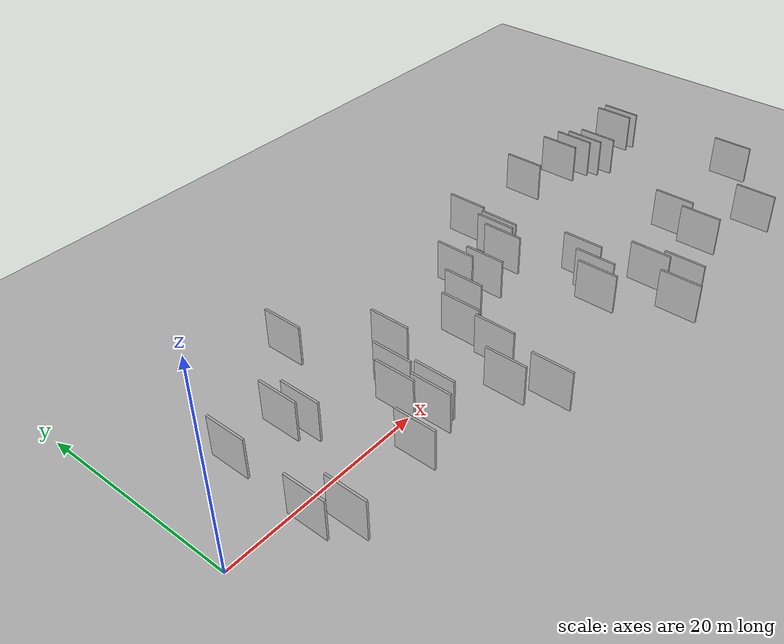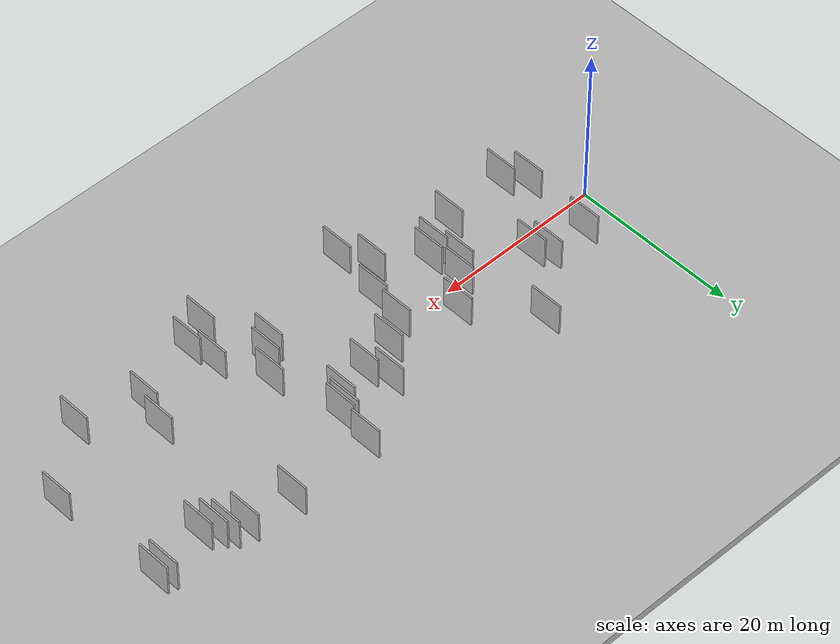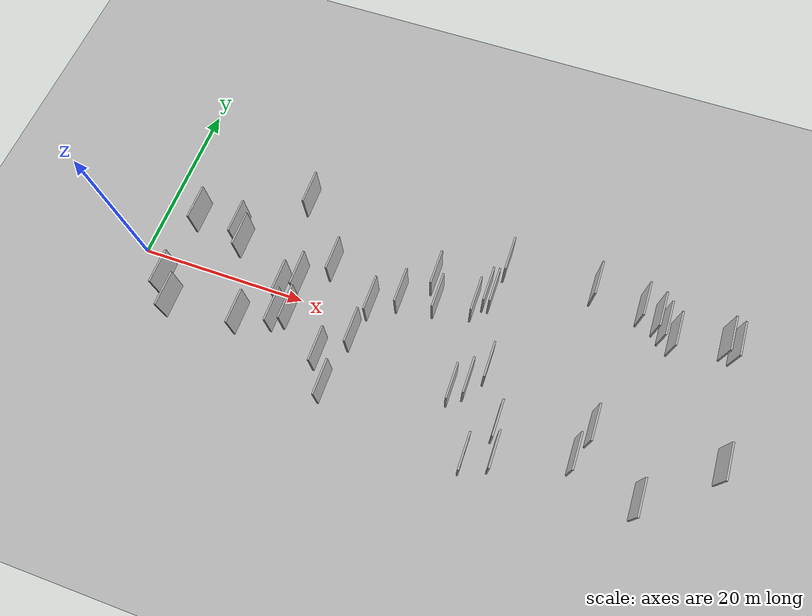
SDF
<?xml version="1.0" encoding="utf-8"?>

<sdf version="1.6">

   <world name="default">

      <gui fullscreen="0">

         <camera name="user_camera">

            <pose>-15 0 4.57585 0 0 0</pose>

            <view_controller>orbit</view_controller>

         </camera>

      </gui>

      <scene>

         <sky>

           <clouds>

             <speed>12</speed>

           </clouds>

         </sky>

         <ambient>0.4 0.4 0.4 1</ambient>

         <background>0.7 0.7 0.7 1</background>

         <shadows>1</shadows>

      </scene>

      <gravity>0 0 -9.8066</gravity>

      <magnetic_field>6e-06 2.3e-05 -4.2e-05</magnetic_field>

      <physics default="0" name="default_physics" type="ode">

         <ode>

            <solver>

               <type>quick</type>

               <iters>10</iters>

               <sor>1.0</sor>

               <use_dynamic_moi_rescaling>0</use_dynamic_moi_rescaling>

            </solver>

            <constraints>

               <cfm>0</cfm>

               <erp>0.2</erp>

               <contact_max_correcting_vel>100</contact_max_correcting_vel>

               <contact_surface_layer>0.001</contact_surface_layer>

            </constraints>

         </ode>

         <max_step_size>0.004</max_step_size>

         <real_time_factor>1</real_time_factor>

         <real_time_update_rate>250</real_time_update_rate>

      </physics>

      <light name="sun" type="directional">

         <cast_shadows>1</cast_shadows>

         <pose>0 0 10 0 0 0</pose>

         <diffuse>0.8 0.8 0.8 1</diffuse>

         <specular>0.2 0.2 0.2 1</specular>

         <attenuation>

            <range>1000</range>

            <constant>0.9</constant>

            <linear>0.01</linear>

            <quadratic>0.001</quadratic>

         </attenuation>

         <direction>-0.5 0.1 -0.9</direction>

      </light>

      <include>

         <name>ground_plane_1</name>

         <uri>model://HANNAS_ground_plane</uri>

         <pose>0 0 0  0 0 0</pose>

      </include>

      <include>

         <name>ground_plane_2</name>

         <uri>model://HANNAS_ground_plane</uri>

         <pose>100 0 0  0 0 0</pose>

      </include>

      <model name="HANNAS_wall_1">

         <static>1</static>

         <pose frame="">18.9152 -3.2764 2.5 0.000000 0.000000 1.570796</pose>

         <link name="link">

            <pose frame="">0 0 2.00 0 0 0</pose>

            <collision name="collision">

               <geometry>

                  <box>

                     <size>4.00 0.2 4.00</size>

                  </box>

               </geometry>

               <max_contacts>10</max_contacts>

               <surface>

                  <contact>

                     <ode/>

                  </contact>

                  <bounce/>

                  <friction>

                     <torsional>

                        <ode/>

                     </torsional>

                     <ode/>

                  </friction>

               </surface>

            </collision>

            <visual name="visual">

               <cast_shadows>0</cast_shadows>

               <geometry>

                  <box>

                     <size>4.00 0.2 4.00</size>

                  </box>

               </geometry>

               <material>

                  <script>

                     <uri>model://HANNAS_wall/materials/scripts</uri>

                     <uri>model://HANNAS_wall/materials/textures</uri>

                     <name>vrc/HANNAS_wall</name>

                  </script>

               </material>

            </visual>

            <self_collide>0</self_collide>

            <enable_wind>0</enable_wind>

            <kinematic>0</kinematic>

         </link>

      </model>

      <model name="HANNAS_wall_2">

         <static>1</static>

         <pose frame="">31.3084 3.2368 2.5 0.000000 0.000000 1.570796</pose>

         <link name="link">

            <pose frame="">0 0 2.00 0 0 0</pose>

            <collision name="collision">

               <geometry>

                  <box>

                     <size>4.00 0.2 4.00</size>

                  </box>

               </geometry>

               <max_contacts>10</max_contacts>

               <surface>

                  <contact>

                     <ode/>

                  </contact>

                  <bounce/>

                  <friction>

                     <torsional>

                        <ode/>

                     </torsional>

                     <ode/>

                  </friction>

               </surface>

            </collision>

            <visual name="visual">

               <cast_shadows>0</cast_shadows>

               <geometry>

                  <box>

                     <size>4.00 0.2 4.00</size>

                  </box>

               </geometry>

               <material>

                  <script>

                     <uri>model://HANNAS_wall/materials/scripts</uri>

                     <uri>model://HANNAS_wall/materials/textures</uri>

                     <name>vrc/HANNAS_wall</name>

                  </script>

               </material>

            </visual>

            <self_collide>0</self_collide>

            <enable_wind>0</enable_wind>

            <kinematic>0</kinematic>

         </link>

      </model>

      <model name="HANNAS_wall_3">

         <static>1</static>

         <pose frame="">59.7423 8.9145 2.5 0.000000 0.000000 1.570796</pose>

         <link name="link">

            <pose frame="">0 0 2.00 0 0 0</pose>

            <collision name="collision">

               <geometry>

                  <box>

                     <size>4.00 0.2 4.00</size>

                  </box>

               </geometry>

               <max_contacts>10</max_contacts>

               <surface>

                  <contact>

                     <ode/>

                  </contact>

                  <bounce/>

                  <friction>

                     <torsional>

                        <ode/>

                     </torsional>

                     <ode/>

                  </friction>

               </surface>

            </collision>

            <visual name="visual">

               <cast_shadows>0</cast_shadows>

               <geometry>

                  <box>

                     <size>4.00 0.2 4.00</size>

                  </box>

               </geometry>

               <material>

                  <script>

                     <uri>model://HANNAS_wall/materials/scripts</uri>

                     <uri>model://HANNAS_wall/materials/textures</uri>

                     <name>vrc/HANNAS_wall</name>

                  </script>

               </material>

            </visual>

            <self_collide>0</self_collide>

            <enable_wind>0</enable_wind>

            <kinematic>0</kinematic>

         </link>

      </model>

      <model name="HANNAS_wall_4">

         <static>1</static>

         <pose frame="">66.5368 9.4041 2.5 0.000000 0.000000 1.570796</pose>

         <link name="link">

            <pose frame="">0 0 2.00 0 0 0</pose>

            <collision name="collision">

               <geometry>

                  <box>

                     <size>4.00 0.2 4.00</size>

                  </box>

               </geometry>

               <max_contacts>10</max_contacts>

               <surface>

                  <contact>

                     <ode/>

                  </contact>

                  <bounce/>

                  <friction>

                     <torsional>

                        <ode/>

                     </torsional>

                     <ode/>

                  </friction>

               </surface>

            </collision>

            <visual name="visual">

               <cast_shadows>0</cast_shadows>

               <geometry>

                  <box>

                     <size>4.00 0.2 4.00</size>

                  </box>

               </geometry>

               <material>

                  <script>

                     <uri>model://HANNAS_wall/materials/scripts</uri>

                     <uri>model://HANNAS_wall/materials/textures</uri>

                     <name>vrc/HANNAS_wall</name>

                  </script>

               </material>

            </visual>

            <self_collide>0</self_collide>

            <enable_wind>0</enable_wind>

            <kinematic>0</kinematic>

         </link>

      </model>

      <model name="HANNAS_wall_5">

         <static>1</static>

         <pose frame="">10.8413 5.2061 2.5 0.000000 0.000000 1.570796</pose>

         <link name="link">

            <pose frame="">0 0 2.00 0 0 0</pose>

            <collision name="collision">

               <geometry>

                  <box>

                     <size>4.00 0.2 4.00</size>

                  </box>

               </geometry>

               <max_contacts>10</max_contacts>

               <surface>

                  <contact>

                     <ode/>

                  </contact>

                  <bounce/>

                  <friction>

                     <torsional>

                        <ode/>

                     </torsional>

                     <ode/>

                  </friction>

               </surface>

            </collision>

            <visual name="visual">

               <cast_shadows>0</cast_shadows>

               <geometry>

                  <box>

                     <size>4.00 0.2 4.00</size>

                  </box>

               </geometry>

               <material>

                  <script>

                     <uri>model://HANNAS_wall/materials/scripts</uri>

                     <uri>model://HANNAS_wall/materials/textures</uri>

                     <name>vrc/HANNAS_wall</name>

                  </script>

               </material>

            </visual>

            <self_collide>0</self_collide>

            <enable_wind>0</enable_wind>

            <kinematic>0</kinematic>

         </link>

      </model>

      <model name="HANNAS_wall_6">

         <static>1</static>

         <pose frame="">46.1111 -10.3459 2.5 0.000000 0.000000 1.570796</pose>

         <link name="link">

            <pose frame="">0 0 2.00 0 0 0</pose>

            <collision name="collision">

               <geometry>

                  <box>

                     <size>4.00 0.2 4.00</size>

                  </box>

               </geometry>

               <max_contacts>10</max_contacts>

               <surface>

                  <contact>

                     <ode/>

                  </contact>

                  <bounce/>

                  <friction>

                     <torsional>

                        <ode/>

                     </torsional>

                     <ode/>

                  </friction>

               </surface>

            </collision>

            <visual name="visual">

               <cast_shadows>0</cast_shadows>

               <geometry>

                  <box>

                     <size>4.00 0.2 4.00</size>

                  </box>

               </geometry>

               <material>

                  <script>

                     <uri>model://HANNAS_wall/materials/scripts</uri>

                     <uri>model://HANNAS_wall/materials/textures</uri>

                     <name>vrc/HANNAS_wall</name>

                  </script>

               </material>

            </visual>

            <self_collide>0</self_collide>

            <enable_wind>0</enable_wind>

            <kinematic>0</kinematic>

         </link>

      </model>

      <model name="HANNAS_wall_7">

         <static>1</static>

         <pose frame="">54.9955 -4.4784 2.5 0.000000 0.000000 1.570796</pose>

         <link name="link">

            <pose frame="">0 0 2.00 0 0 0</pose>

            <collision name="collision">

               <geometry>

                  <box>

                     <size>4.00 0.2 4.00</size>

                  </box>

               </geometry>

               <max_contacts>10</max_contacts>

               <surface>

                  <contact>

                     <ode/>

                  </contact>

                  <bounce/>

                  <friction>

                     <torsional>

                        <ode/>

                     </torsional>

                     <ode/>

                  </friction>

               </surface>

            </collision>

            <visual name="visual">

               <cast_shadows>0</cast_shadows>

               <geometry>

                  <box>

                     <size>4.00 0.2 4.00</size>

                  </box>

               </geometry>

               <material>

                  <script>

                     <uri>model://HANNAS_wall/materials/scripts</uri>

                     <uri>model://HANNAS_wall/materials/textures</uri>

                     <name>vrc/HANNAS_wall</name>

                  </script>

               </material>

            </visual>

            <self_collide>0</self_collide>

            <enable_wind>0</enable_wind>

            <kinematic>0</kinematic>

         </link>

      </model>

      <model name="HANNAS_wall_8">

         <static>1</static>

         <pose frame="">26.8889 -9.0898 2.5 0.000000 0.000000 1.570796</pose>

         <link name="link">

            <pose frame="">0 0 2.00 0 0 0</pose>

            <collision name="collision">

               <geometry>

                  <box>

                     <size>4.00 0.2 4.00</size>

                  </box>

               </geometry>

               <max_contacts>10</max_contacts>

               <surface>

                  <contact>

                     <ode/>

                  </contact>

                  <bounce/>

                  <friction>

                     <torsional>

                        <ode/>

                     </torsional>

                     <ode/>

                  </friction>

               </surface>

            </collision>

            <visual name="visual">

               <cast_shadows>0</cast_shadows>

               <geometry>

                  <box>

                     <size>4.00 0.2 4.00</size>

                  </box>

               </geometry>

               <material>

                  <script>

                     <uri>model://HANNAS_wall/materials/scripts</uri>

                     <uri>model://HANNAS_wall/materials/textures</uri>

                     <name>vrc/HANNAS_wall</name>

                  </script>

               </material>

            </visual>

            <self_collide>0</self_collide>

            <enable_wind>0</enable_wind>

            <kinematic>0</kinematic>

         </link>

      </model>

      <model name="HANNAS_wall_9">

         <static>1</static>

         <pose frame="">20.2172 -2.5697 2.5 0.000000 0.000000 1.570796</pose>

         <link name="link">

            <pose frame="">0 0 2.00 0 0 0</pose>

            <collision name="collision">

               <geometry>

                  <box>

                     <size>4.00 0.2 4.00</size>

                  </box>

               </geometry>

               <max_contacts>10</max_contacts>

               <surface>

                  <contact>

                     <ode/>

                  </contact>

                  <bounce/>

                  <friction>

                     <torsional>

                        <ode/>

                     </torsional>

                     <ode/>

                  </friction>

               </surface>

            </collision>

            <visual name="visual">

               <cast_shadows>0</cast_shadows>

               <geometry>

                  <box>

                     <size>4.00 0.2 4.00</size>

                  </box>

               </geometry>

               <material>

                  <script>

                     <uri>model://HANNAS_wall/materials/scripts</uri>

                     <uri>model://HANNAS_wall/materials/textures</uri>

                     <name>vrc/HANNAS_wall</name>

                  </script>

               </material>

            </visual>

            <self_collide>0</self_collide>

            <enable_wind>0</enable_wind>

            <kinematic>0</kinematic>

         </link>

      </model>

      <model name="HANNAS_wall_10">

         <static>1</static>

         <pose frame="">68.4277 -4.0222 2.5 0.000000 0.000000 1.570796</pose>

         <link name="link">

            <pose frame="">0 0 2.00 0 0 0</pose>

            <collision name="collision">

               <geometry>

                  <box>

                     <size>4.00 0.2 4.00</size>

                  </box>

               </geometry>

               <max_contacts>10</max_contacts>

               <surface>

                  <contact>

                     <ode/>

                  </contact>

                  <bounce/>

                  <friction>

                     <torsional>

                        <ode/>

                     </torsional>

                     <ode/>

                  </friction>

               </surface>

            </collision>

            <visual name="visual">

               <cast_shadows>0</cast_shadows>

               <geometry>

                  <box>

                     <size>4.00 0.2 4.00</size>

                  </box>

               </geometry>

               <material>

                  <script>

                     <uri>model://HANNAS_wall/materials/scripts</uri>

                     <uri>model://HANNAS_wall/materials/textures</uri>

                     <name>vrc/HANNAS_wall</name>

                  </script>

               </material>

            </visual>

            <self_collide>0</self_collide>

            <enable_wind>0</enable_wind>

            <kinematic>0</kinematic>

         </link>

      </model>

      <model name="HANNAS_wall_11">

         <static>1</static>

         <pose frame="">40.3385 6.4773 2.5 0.000000 0.000000 1.570796</pose>

         <link name="link">

            <pose frame="">0 0 2.00 0 0 0</pose>

            <collision name="collision">

               <geometry>

                  <box>

                     <size>4.00 0.2 4.00</size>

                  </box>

               </geometry>

               <max_contacts>10</max_contacts>

               <surface>

                  <contact>

                     <ode/>

                  </contact>

                  <bounce/>

                  <friction>

                     <torsional>

                        <ode/>

                     </torsional>

                     <ode/>

                  </friction>

               </surface>

            </collision>

            <visual name="visual">

               <cast_shadows>0</cast_shadows>

               <geometry>

                  <box>

                     <size>4.00 0.2 4.00</size>

                  </box>

               </geometry>

               <material>

                  <script>

                     <uri>model://HANNAS_wall/materials/scripts</uri>

                     <uri>model://HANNAS_wall/materials/textures</uri>

                     <name>vrc/HANNAS_wall</name>

                  </script>

               </material>

            </visual>

            <self_collide>0</self_collide>

            <enable_wind>0</enable_wind>

            <kinematic>0</kinematic>

         </link>

      </model>

      <model name="HANNAS_wall_12">

         <static>1</static>

         <pose frame="">39.9036 -5.0857 2.5 0.000000 0.000000 1.570796</pose>

         <link name="link">

            <pose frame="">0 0 2.00 0 0 0</pose>

            <collision name="collision">

               <geometry>

                  <box>

                     <size>4.00 0.2 4.00</size>

                  </box>

               </geometry>

               <max_contacts>10</max_contacts>

               <surface>

                  <contact>

                     <ode/>

                  </contact>

                  <bounce/>

                  <friction>

                     <torsional>

                        <ode/>

                     </torsional>

                     <ode/>

                  </friction>

               </surface>

            </collision>

            <visual name="visual">

               <cast_shadows>0</cast_shadows>

               <geometry>

                  <box>

                     <size>4.00 0.2 4.00</size>

                  </box>

               </geometry>

               <material>

                  <script>

                     <uri>model://HANNAS_wall/materials/scripts</uri>

                     <uri>model://HANNAS_wall/materials/textures</uri>

                     <name>vrc/HANNAS_wall</name>

                  </script>

               </material>

            </visual>

            <self_collide>0</self_collide>

            <enable_wind>0</enable_wind>

            <kinematic>0</kinematic>

         </link>

      </model>

      <model name="HANNAS_wall_13">

         <static>1</static>

         <pose frame="">35.3402 3.9706 2.5 0.000000 0.000000 1.570796</pose>

         <link name="link">

            <pose frame="">0 0 2.00 0 0 0</pose>

            <collision name="collision">

               <geometry>

                  <box>

                     <size>4.00 0.2 4.00</size>

                  </box>

               </geometry>

               <max_contacts>10</max_contacts>

               <surface>

                  <contact>

                     <ode/>

                  </contact>

                  <bounce/>

                  <friction>

                     <torsional>

                        <ode/>

                     </torsional>

                     <ode/>

                  </friction>

               </surface>

            </collision>

            <visual name="visual">

               <cast_shadows>0</cast_shadows>

               <geometry>

                  <box>

                     <size>4.00 0.2 4.00</size>

                  </box>

               </geometry>

               <material>

                  <script>

                     <uri>model://HANNAS_wall/materials/scripts</uri>

                     <uri>model://HANNAS_wall/materials/textures</uri>

                     <name>vrc/HANNAS_wall</name>

                  </script>

               </material>

            </visual>

            <self_collide>0</self_collide>

            <enable_wind>0</enable_wind>

            <kinematic>0</kinematic>

         </link>

      </model>

      <model name="HANNAS_wall_14">

         <static>1</static>

         <pose frame="">11.9084 3.8685 2.5 0.000000 0.000000 1.570796</pose>

         <link name="link">

            <pose frame="">0 0 2.00 0 0 0</pose>

            <collision name="collision">

               <geometry>

                  <box>

                     <size>4.00 0.2 4.00</size>

                  </box>

               </geometry>

               <max_contacts>10</max_contacts>

               <surface>

                  <contact>

                     <ode/>

                  </contact>

                  <bounce/>

                  <friction>

                     <torsional>

                        <ode/>

                     </torsional>

                     <ode/>

                  </friction>

               </surface>

            </collision>

            <visual name="visual">

               <cast_shadows>0</cast_shadows>

               <geometry>

                  <box>

                     <size>4.00 0.2 4.00</size>

                  </box>

               </geometry>

               <material>

                  <script>

                     <uri>model://HANNAS_wall/materials/scripts</uri>

                     <uri>model://HANNAS_wall/materials/textures</uri>

                     <name>vrc/HANNAS_wall</name>

                  </script>

               </material>

            </visual>

            <self_collide>0</self_collide>

            <enable_wind>0</enable_wind>

            <kinematic>0</kinematic>

         </link>

      </model>

      <model name="HANNAS_wall_15">

         <static>1</static>

         <pose frame="">42.9193 -1.6453 2.5 0.000000 0.000000 1.570796</pose>

         <link name="link">

            <pose frame="">0 0 2.00 0 0 0</pose>

            <collision name="collision">

               <geometry>

                  <box>

                     <size>4.00 0.2 4.00</size>

                  </box>

               </geometry>

               <max_contacts>10</max_contacts>

               <surface>

                  <contact>

                     <ode/>

                  </contact>

                  <bounce/>

                  <friction>

                     <torsional>

                        <ode/>

                     </torsional>

                     <ode/>

                  </friction>

               </surface>

            </collision>

            <visual name="visual">

               <cast_shadows>0</cast_shadows>

               <geometry>

                  <box>

                     <size>4.00 0.2 4.00</size>

                  </box>

               </geometry>

               <material>

                  <script>

                     <uri>model://HANNAS_wall/materials/scripts</uri>

                     <uri>model://HANNAS_wall/materials/textures</uri>

                     <name>vrc/HANNAS_wall</name>

                  </script>

               </material>

            </visual>

            <self_collide>0</self_collide>

            <enable_wind>0</enable_wind>

            <kinematic>0</kinematic>

         </link>

      </model>

      <model name="HANNAS_wall_16">

         <static>1</static>

         <pose frame="">51.5432 11.0576 2.5 0.000000 0.000000 1.570796</pose>

         <link name="link">

            <pose frame="">0 0 2.00 0 0 0</pose>

            <collision name="collision">

               <geometry>

                  <box>

                     <size>4.00 0.2 4.00</size>

                  </box>

               </geometry>

               <max_contacts>10</max_contacts>

               <surface>

                  <contact>

                     <ode/>

                  </contact>

                  <bounce/>

                  <friction>

                     <torsional>

                        <ode/>

                     </torsional>

                     <ode/>

                  </friction>

               </surface>

            </collision>

            <visual name="visual">

               <cast_shadows>0</cast_shadows>

               <geometry>

                  <box>

                     <size>4.00 0.2 4.00</size>

                  </box>

               </geometry>

               <material>

                  <script>

                     <uri>model://HANNAS_wall/materials/scripts</uri>

                     <uri>model://HANNAS_wall/materials/textures</uri>

                     <name>vrc/HANNAS_wall</name>

                  </script>

               </material>

            </visual>

            <self_collide>0</self_collide>

            <enable_wind>0</enable_wind>

            <kinematic>0</kinematic>

         </link>

      </model>

      <model name="HANNAS_wall_17">

         <static>1</static>

         <pose frame="">7.1362 -5.4254 2.5 0.000000 0.000000 1.570796</pose>

         <link name="link">

            <pose frame="">0 0 2.00 0 0 0</pose>

            <collision name="collision">

               <geometry>

                  <box>

                     <size>4.00 0.2 4.00</size>

                  </box>

               </geometry>

               <max_contacts>10</max_contacts>

               <surface>

                  <contact>

                     <ode/>

                  </contact>

                  <bounce/>

                  <friction>

                     <torsional>

                        <ode/>

                     </torsional>

                     <ode/>

                  </friction>

               </surface>

            </collision>

            <visual name="visual">

               <cast_shadows>0</cast_shadows>

               <geometry>

                  <box>

                     <size>4.00 0.2 4.00</size>

                  </box>

               </geometry>

               <material>

                  <script>

                     <uri>model://HANNAS_wall/materials/scripts</uri>

                     <uri>model://HANNAS_wall/materials/textures</uri>

                     <name>vrc/HANNAS_wall</name>

                  </script>

               </material>

            </visual>

            <self_collide>0</self_collide>

            <enable_wind>0</enable_wind>

            <kinematic>0</kinematic>

         </link>

      </model>

      <model name="HANNAS_wall_18">

         <static>1</static>

         <pose frame="">40.9974 6.5604 2.5 0.000000 0.000000 1.570796</pose>

         <link name="link">

            <pose frame="">0 0 2.00 0 0 0</pose>

            <collision name="collision">

               <geometry>

                  <box>

                     <size>4.00 0.2 4.00</size>

                  </box>

               </geometry>

               <max_contacts>10</max_contacts>

               <surface>

                  <contact>

                     <ode/>

                  </contact>

                  <bounce/>

                  <friction>

                     <torsional>

                        <ode/>

                     </torsional>

                     <ode/>

                  </friction>

               </surface>

            </collision>

            <visual name="visual">

               <cast_shadows>0</cast_shadows>

               <geometry>

                  <box>

                     <size>4.00 0.2 4.00</size>

                  </box>

               </geometry>

               <material>

                  <script>

                     <uri>model://HANNAS_wall/materials/scripts</uri>

                     <uri>model://HANNAS_wall/materials/textures</uri>

                     <name>vrc/HANNAS_wall</name>

                  </script>

               </material>

            </visual>

            <self_collide>0</self_collide>

            <enable_wind>0</enable_wind>

            <kinematic>0</kinematic>

         </link>

      </model>

      <model name="HANNAS_wall_19">

         <static>1</static>

         <pose frame="">18.3172 -0.0815 2.5 0.000000 0.000000 1.570796</pose>

         <link name="link">

            <pose frame="">0 0 2.00 0 0 0</pose>

            <collision name="collision">

               <geometry>

                  <box>

                     <size>4.00 0.2 4.00</size>

                  </box>

               </geometry>

               <max_contacts>10</max_contacts>

               <surface>

                  <contact>

                     <ode/>

                  </contact>

                  <bounce/>

                  <friction>

                     <torsional>

                        <ode/>

                     </torsional>

                     <ode/>

                  </friction>

               </surface>

            </collision>

            <visual name="visual">

               <cast_shadows>0</cast_shadows>

               <geometry>

                  <box>

                     <size>4.00 0.2 4.00</size>

                  </box>

               </geometry>

               <material>

                  <script>

                     <uri>model://HANNAS_wall/materials/scripts</uri>

                     <uri>model://HANNAS_wall/materials/textures</uri>

                     <name>vrc/HANNAS_wall</name>

                  </script>

               </material>

            </visual>

            <self_collide>0</self_collide>

            <enable_wind>0</enable_wind>

            <kinematic>0</kinematic>

         </link>

      </model>

      <model name="HANNAS_wall_20">

         <static>1</static>

         <pose frame="">17.2903 11.3430 2.5 0.000000 0.000000 1.570796</pose>

         <link name="link">

            <pose frame="">0 0 2.00 0 0 0</pose>

            <collision name="collision">

               <geometry>

                  <box>

                     <size>4.00 0.2 4.00</size>

                  </box>

               </geometry>

               <max_contacts>10</max_contacts>

               <surface>

                  <contact>

                     <ode/>

                  </contact>

                  <bounce/>

                  <friction>

                     <torsional>

                        <ode/>

                     </torsional>

                     <ode/>

                  </friction>

               </surface>

            </collision>

            <visual name="visual">

               <cast_shadows>0</cast_shadows>

               <geometry>

                  <box>

                     <size>4.00 0.2 4.00</size>

                  </box>

               </geometry>

               <material>

                  <script>

                     <uri>model://HANNAS_wall/materials/scripts</uri>

                     <uri>model://HANNAS_wall/materials/textures</uri>

                     <name>vrc/HANNAS_wall</name>

                  </script>

               </material>

            </visual>

            <self_collide>0</self_collide>

            <enable_wind>0</enable_wind>

            <kinematic>0</kinematic>

         </link>

      </model>

      <model name="HANNAS_wall_21">

         <static>1</static>

         <pose frame="">22.8854 4.4621 2.5 0.000000 0.000000 1.570796</pose>

         <link name="link">

            <pose frame="">0 0 2.00 0 0 0</pose>

            <collision name="collision">

               <geometry>

                  <box>

                     <size>4.00 0.2 4.00</size>

                  </box>

               </geometry>

               <max_contacts>10</max_contacts>

               <surface>

                  <contact>

                     <ode/>

                  </contact>

                  <bounce/>

                  <friction>

                     <torsional>

                        <ode/>

                     </torsional>

                     <ode/>

                  </friction>

               </surface>

            </collision>

            <visual name="visual">

               <cast_shadows>0</cast_shadows>

               <geometry>

                  <box>

                     <size>4.00 0.2 4.00</size>

                  </box>

               </geometry>

               <material>

                  <script>

                     <uri>model://HANNAS_wall/materials/scripts</uri>

                     <uri>model://HANNAS_wall/materials/textures</uri>

                     <name>vrc/HANNAS_wall</name>

                  </script>

               </material>

            </visual>

            <self_collide>0</self_collide>

            <enable_wind>0</enable_wind>

            <kinematic>0</kinematic>

         </link>

      </model>

      <model name="HANNAS_wall_22">

         <static>1</static>

         <pose frame="">27.8503 -2.7336 2.5 0.000000 0.000000 1.570796</pose>

         <link name="link">

            <pose frame="">0 0 2.00 0 0 0</pose>

            <collision name="collision">

               <geometry>

                  <box>

                     <size>4.00 0.2 4.00</size>

                  </box>

               </geometry>

               <max_contacts>10</max_contacts>

               <surface>

                  <contact>

                     <ode/>

                  </contact>

                  <bounce/>

                  <friction>

                     <torsional>

                        <ode/>

                     </torsional>

                     <ode/>

                  </friction>

               </surface>

            </collision>

            <visual name="visual">

               <cast_shadows>0</cast_shadows>

               <geometry>

                  <box>

                     <size>4.00 0.2 4.00</size>

                  </box>

               </geometry>

               <material>

                  <script>

                     <uri>model://HANNAS_wall/materials/scripts</uri>

                     <uri>model://HANNAS_wall/materials/textures</uri>

                     <name>vrc/HANNAS_wall</name>

                  </script>

               </material>

            </visual>

            <self_collide>0</self_collide>

            <enable_wind>0</enable_wind>

            <kinematic>0</kinematic>

         </link>

      </model>

      <model name="HANNAS_wall_23">

         <static>1</static>

         <pose frame="">28.4743 1.3272 2.5 0.000000 0.000000 1.570796</pose>

         <link name="link">

            <pose frame="">0 0 2.00 0 0 0</pose>

            <collision name="collision">

               <geometry>

                  <box>

                     <size>4.00 0.2 4.00</size>

                  </box>

               </geometry>

               <max_contacts>10</max_contacts>

               <surface>

                  <contact>

                     <ode/>

                  </contact>

                  <bounce/>

                  <friction>

                     <torsional>

                        <ode/>

                     </torsional>

                     <ode/>

                  </friction>

               </surface>

            </collision>

            <visual name="visual">

               <cast_shadows>0</cast_shadows>

               <geometry>

                  <box>

                     <size>4.00 0.2 4.00</size>

                  </box>

               </geometry>

               <material>

                  <script>

                     <uri>model://HANNAS_wall/materials/scripts</uri>

                     <uri>model://HANNAS_wall/materials/textures</uri>

                     <name>vrc/HANNAS_wall</name>

                  </script>

               </material>

            </visual>

            <self_collide>0</self_collide>

            <enable_wind>0</enable_wind>

            <kinematic>0</kinematic>

         </link>

      </model>

      <model name="HANNAS_wall_24">

         <static>1</static>

         <pose frame="">25.0755 -5.8724 2.5 0.000000 0.000000 1.570796</pose>

         <link name="link">

            <pose frame="">0 0 2.00 0 0 0</pose>

            <collision name="collision">

               <geometry>

                  <box>

                     <size>4.00 0.2 4.00</size>

                  </box>

               </geometry>

               <max_contacts>10</max_contacts>

               <surface>

                  <contact>

                     <ode/>

                  </contact>

                  <bounce/>

                  <friction>

                     <torsional>

                        <ode/>

                     </torsional>

                     <ode/>

                  </friction>

               </surface>

            </collision>

            <visual name="visual">

               <cast_shadows>0</cast_shadows>

               <geometry>

                  <box>

                     <size>4.00 0.2 4.00</size>

                  </box>

               </geometry>

               <material>

                  <script>

                     <uri>model://HANNAS_wall/materials/scripts</uri>

                     <uri>model://HANNAS_wall/materials/textures</uri>

                     <name>vrc/HANNAS_wall</name>

                  </script>

               </material>

            </visual>

            <self_collide>0</self_collide>

            <enable_wind>0</enable_wind>

            <kinematic>0</kinematic>

         </link>

      </model>

      <model name="HANNAS_wall_25">

         <static>1</static>

         <pose frame="">60.9862 -10.1767 2.5 0.000000 0.000000 1.570796</pose>

         <link name="link">

            <pose frame="">0 0 2.00 0 0 0</pose>

            <collision name="collision">

               <geometry>

                  <box>

                     <size>4.00 0.2 4.00</size>

                  </box>

               </geometry>

               <max_contacts>10</max_contacts>

               <surface>

                  <contact>

                     <ode/>

                  </contact>

                  <bounce/>

                  <friction>

                     <torsional>

                        <ode/>

                     </torsional>

                     <ode/>

                  </friction>

               </surface>

            </collision>

            <visual name="visual">

               <cast_shadows>0</cast_shadows>

               <geometry>

                  <box>

                     <size>4.00 0.2 4.00</size>

                  </box>

               </geometry>

               <material>

                  <script>

                     <uri>model://HANNAS_wall/materials/scripts</uri>

                     <uri>model://HANNAS_wall/materials/textures</uri>

                     <name>vrc/HANNAS_wall</name>

                  </script>

               </material>

            </visual>

            <self_collide>0</self_collide>

            <enable_wind>0</enable_wind>

            <kinematic>0</kinematic>

         </link>

      </model>

      <model name="HANNAS_wall_26">

         <static>1</static>

         <pose frame="">60.9723 8.0764 2.5 0.000000 0.000000 1.570796</pose>

         <link name="link">

            <pose frame="">0 0 2.00 0 0 0</pose>

            <collision name="collision">

               <geometry>

                  <box>

                     <size>4.00 0.2 4.00</size>

                  </box>

               </geometry>

               <max_contacts>10</max_contacts>

               <surface>

                  <contact>

                     <ode/>

                  </contact>

                  <bounce/>

                  <friction>

                     <torsional>

                        <ode/>

                     </torsional>

                     <ode/>

                  </friction>

               </surface>

            </collision>

            <visual name="visual">

               <cast_shadows>0</cast_shadows>

               <geometry>

                  <box>

                     <size>4.00 0.2 4.00</size>

                  </box>

               </geometry>

               <material>

                  <script>

                     <uri>model://HANNAS_wall/materials/scripts</uri>

                     <uri>model://HANNAS_wall/materials/textures</uri>

                     <name>vrc/HANNAS_wall</name>

                  </script>

               </material>

            </visual>

            <self_collide>0</self_collide>

            <enable_wind>0</enable_wind>

            <kinematic>0</kinematic>

         </link>

      </model>

      <model name="HANNAS_wall_27">

         <static>1</static>

         <pose frame="">34.3063 6.5168 2.5 0.000000 0.000000 1.570796</pose>

         <link name="link">

            <pose frame="">0 0 2.00 0 0 0</pose>

            <collision name="collision">

               <geometry>

                  <box>

                     <size>4.00 0.2 4.00</size>

                  </box>

               </geometry>

               <max_contacts>10</max_contacts>

               <surface>

                  <contact>

                     <ode/>

                  </contact>

                  <bounce/>

                  <friction>

                     <torsional>

                        <ode/>

                     </torsional>

                     <ode/>

                  </friction>

               </surface>

            </collision>

            <visual name="visual">

               <cast_shadows>0</cast_shadows>

               <geometry>

                  <box>

                     <size>4.00 0.2 4.00</size>

                  </box>

               </geometry>

               <material>

                  <script>

                     <uri>model://HANNAS_wall/materials/scripts</uri>

                     <uri>model://HANNAS_wall/materials/textures</uri>

                     <name>vrc/HANNAS_wall</name>

                  </script>

               </material>

            </visual>

            <self_collide>0</self_collide>

            <enable_wind>0</enable_wind>

            <kinematic>0</kinematic>

         </link>

      </model>

      <model name="HANNAS_wall_28">

         <static>1</static>

         <pose frame="">53.9374 -7.8560 2.5 0.000000 0.000000 1.570796</pose>

         <link name="link">

            <pose frame="">0 0 2.00 0 0 0</pose>

            <collision name="collision">

               <geometry>

                  <box>

                     <size>4.00 0.2 4.00</size>

                  </box>

               </geometry>

               <max_contacts>10</max_contacts>

               <surface>

                  <contact>

                     <ode/>

                  </contact>

                  <bounce/>

                  <friction>

                     <torsional>

                        <ode/>

                     </torsional>

                     <ode/>

                  </friction>

               </surface>

            </collision>

            <visual name="visual">

               <cast_shadows>0</cast_shadows>

               <geometry>

                  <box>

                     <size>4.00 0.2 4.00</size>

                  </box>

               </geometry>

               <material>

                  <script>

                     <uri>model://HANNAS_wall/materials/scripts</uri>

                     <uri>model://HANNAS_wall/materials/textures</uri>

                     <name>vrc/HANNAS_wall</name>

                  </script>

               </material>

            </visual>

            <self_collide>0</self_collide>

            <enable_wind>0</enable_wind>

            <kinematic>0</kinematic>

         </link>

      </model>

      <model name="HANNAS_wall_29">

         <static>1</static>

         <pose frame="">67.5716 9.1341 2.5 0.000000 0.000000 1.570796</pose>

         <link name="link">

            <pose frame="">0 0 2.00 0 0 0</pose>

            <collision name="collision">

               <geometry>

                  <box>

                     <size>4.00 0.2 4.00</size>

                  </box>

               </geometry>

               <max_contacts>10</max_contacts>

               <surface>

                  <contact>

                     <ode/>

                  </contact>

                  <bounce/>

                  <friction>

                     <torsional>

                        <ode/>

                     </torsional>

                     <ode/>

                  </friction>

               </surface>

            </collision>

            <visual name="visual">

               <cast_shadows>0</cast_shadows>

               <geometry>

                  <box>

                     <size>4.00 0.2 4.00</size>

                  </box>

               </geometry>

               <material>

                  <script>

                     <uri>model://HANNAS_wall/materials/scripts</uri>

                     <uri>model://HANNAS_wall/materials/textures</uri>

                     <name>vrc/HANNAS_wall</name>

                  </script>

               </material>

            </visual>

            <self_collide>0</self_collide>

            <enable_wind>0</enable_wind>

            <kinematic>0</kinematic>

         </link>

      </model>

      <model name="HANNAS_wall_30">

         <static>1</static>

         <pose frame="">43.2944 -11.4804 2.5 0.000000 0.000000 1.570796</pose>

         <link name="link">

            <pose frame="">0 0 2.00 0 0 0</pose>

            <collision name="collision">

               <geometry>

                  <box>

                     <size>4.00 0.2 4.00</size>

                  </box>

               </geometry>

               <max_contacts>10</max_contacts>

               <surface>

                  <contact>

                     <ode/>

                  </contact>

                  <bounce/>

                  <friction>

                     <torsional>

                        <ode/>

                     </torsional>

                     <ode/>

                  </friction>

               </surface>

            </collision>

            <visual name="visual">

               <cast_shadows>0</cast_shadows>

               <geometry>

                  <box>

                     <size>4.00 0.2 4.00</size>

                  </box>

               </geometry>

               <material>

                  <script>

                     <uri>model://HANNAS_wall/materials/scripts</uri>

                     <uri>model://HANNAS_wall/materials/textures</uri>

                     <name>vrc/HANNAS_wall</name>

                  </script>

               </material>

            </visual>

            <self_collide>0</self_collide>

            <enable_wind>0</enable_wind>

            <kinematic>0</kinematic>

         </link>

      </model>

      <model name="HANNAS_wall_31">

         <static>1</static>

         <pose frame="">15.1803 -4.8280 2.5 0.000000 0.000000 1.570796</pose>

         <link name="link">

            <pose frame="">0 0 2.00 0 0 0</pose>

            <collision name="collision">

               <geometry>

                  <box>

                     <size>4.00 0.2 4.00</size>

                  </box>

               </geometry>

               <max_contacts>10</max_contacts>

               <surface>

                  <contact>

                     <ode/>

                  </contact>

                  <bounce/>

                  <friction>

                     <torsional>

                        <ode/>

                     </torsional>

                     <ode/>

                  </friction>

               </surface>

            </collision>

            <visual name="visual">

               <cast_shadows>0</cast_shadows>

               <geometry>

                  <box>

                     <size>4.00 0.2 4.00</size>

                  </box>

               </geometry>

               <material>

                  <script>

                     <uri>model://HANNAS_wall/materials/scripts</uri>

                     <uri>model://HANNAS_wall/materials/textures</uri>

                     <name>vrc/HANNAS_wall</name>

                  </script>

               </material>

            </visual>

            <self_collide>0</self_collide>

            <enable_wind>0</enable_wind>

            <kinematic>0</kinematic>

         </link>

      </model>

      <model name="HANNAS_wall_32">

         <static>1</static>

         <pose frame="">39.4001 4.9396 2.5 0.000000 0.000000 1.570796</pose>

         <link name="link">

            <pose frame="">0 0 2.00 0 0 0</pose>

            <collision name="collision">

               <geometry>

                  <box>

                     <size>4.00 0.2 4.00</size>

                  </box>

               </geometry>

               <max_contacts>10</max_contacts>

               <surface>

                  <contact>

                     <ode/>

                  </contact>

                  <bounce/>

                  <friction>

                     <torsional>

                        <ode/>

                     </torsional>

                     <ode/>

                  </friction>

               </surface>

            </collision>

            <visual name="visual">

               <cast_shadows>0</cast_shadows>

               <geometry>

                  <box>

                     <size>4.00 0.2 4.00</size>

                  </box>

               </geometry>

               <material>

                  <script>

                     <uri>model://HANNAS_wall/materials/scripts</uri>

                     <uri>model://HANNAS_wall/materials/textures</uri>

                     <name>vrc/HANNAS_wall</name>

                  </script>

               </material>

            </visual>

            <self_collide>0</self_collide>

            <enable_wind>0</enable_wind>

            <kinematic>0</kinematic>

         </link>

      </model>

      <model name="HANNAS_wall_33">

         <static>1</static>

         <pose frame="">5.3353 -3.2150 2.5 0.000000 0.000000 1.570796</pose>

         <link name="link">

            <pose frame="">0 0 2.00 0 0 0</pose>

            <collision name="collision">

               <geometry>

                  <box>

                     <size>4.00 0.2 4.00</size>

                  </box>

               </geometry>

               <max_contacts>10</max_contacts>

               <surface>

                  <contact>

                     <ode/>

                  </contact>

                  <bounce/>

                  <friction>

                     <torsional>

                        <ode/>

                     </torsional>

                     <ode/>

                  </friction>

               </surface>

            </collision>

            <visual name="visual">

               <cast_shadows>0</cast_shadows>

               <geometry>

                  <box>

                     <size>4.00 0.2 4.00</size>

                  </box>

               </geometry>

               <material>

                  <script>

                     <uri>model://HANNAS_wall/materials/scripts</uri>

                     <uri>model://HANNAS_wall/materials/textures</uri>

                     <name>vrc/HANNAS_wall</name>

                  </script>

               </material>

            </visual>

            <self_collide>0</self_collide>

            <enable_wind>0</enable_wind>

            <kinematic>0</kinematic>

         </link>

      </model>

      <model name="HANNAS_wall_34">

         <static>1</static>

         <pose frame="">41.3659 -3.9363 2.5 0.000000 0.000000 1.570796</pose>

         <link name="link">

            <pose frame="">0 0 2.00 0 0 0</pose>

            <collision name="collision">

               <geometry>

                  <box>

                     <size>4.00 0.2 4.00</size>

                  </box>

               </geometry>

               <max_contacts>10</max_contacts>

               <surface>

                  <contact>

                     <ode/>

                  </contact>

                  <bounce/>

                  <friction>

                     <torsional>

                        <ode/>

                     </torsional>

                     <ode/>

                  </friction>

               </surface>

            </collision>

            <visual name="visual">

               <cast_shadows>0</cast_shadows>

               <geometry>

                  <box>

                     <size>4.00 0.2 4.00</size>

                  </box>

               </geometry>

               <material>

                  <script>

                     <uri>model://HANNAS_wall/materials/scripts</uri>

                     <uri>model://HANNAS_wall/materials/textures</uri>

                     <name>vrc/HANNAS_wall</name>

                  </script>

               </material>

            </visual>

            <self_collide>0</self_collide>

            <enable_wind>0</enable_wind>

            <kinematic>0</kinematic>

         </link>

      </model>

      <model name="HANNAS_wall_35">

         <static>1</static>

         <pose frame="">19.8574 1.5352 2.5 0.000000 0.000000 1.570796</pose>

         <link name="link">

            <pose frame="">0 0 2.00 0 0 0</pose>

            <collision name="collision">

               <geometry>

                  <box>

                     <size>4.00 0.2 4.00</size>

                  </box>

               </geometry>

               <max_contacts>10</max_contacts>

               <surface>

                  <contact>

                     <ode/>

                  </contact>

                  <bounce/>

                  <friction>

                     <torsional>

                        <ode/>

                     </torsional>

                     <ode/>

                  </friction>

               </surface>

            </collision>

            <visual name="visual">

               <cast_shadows>0</cast_shadows>

               <geometry>

                  <box>

                     <size>4.00 0.2 4.00</size>

                  </box>

               </geometry>

               <material>

                  <script>

                     <uri>model://HANNAS_wall/materials/scripts</uri>

                     <uri>model://HANNAS_wall/materials/textures</uri>

                     <name>vrc/HANNAS_wall</name>

                  </script>

               </material>

            </visual>

            <self_collide>0</self_collide>

            <enable_wind>0</enable_wind>

            <kinematic>0</kinematic>

         </link>

      </model>

      <model name="HANNAS_wall_36">

         <static>1</static>

         <pose frame="">57.0321 10.3433 2.5 0.000000 0.000000 1.570796</pose>

         <link name="link">

            <pose frame="">0 0 2.00 0 0 0</pose>

            <collision name="collision">

               <geometry>

                  <box>

                     <size>4.00 0.2 4.00</size>

                  </box>

               </geometry>

               <max_contacts>10</max_contacts>

               <surface>

                  <contact>

                     <ode/>

                  </contact>

                  <bounce/>

                  <friction>

                     <torsional>

                        <ode/>

                     </torsional>

                     <ode/>

                  </friction>

               </surface>

            </collision>

            <visual name="visual">

               <cast_shadows>0</cast_shadows>

               <geometry>

                  <box>

                     <size>4.00 0.2 4.00</size>

                  </box>

               </geometry>

               <material>

                  <script>

                     <uri>model://HANNAS_wall/materials/scripts</uri>

                     <uri>model://HANNAS_wall/materials/textures</uri>

                     <name>vrc/HANNAS_wall</name>

                  </script>

               </material>

            </visual>

            <self_collide>0</self_collide>

            <enable_wind>0</enable_wind>

            <kinematic>0</kinematic>

         </link>

      </model>

      <model name="HANNAS_wall_37">

         <static>1</static>

         <pose frame="">58.9368 9.7455 2.5 0.000000 0.000000 1.570796</pose>

         <link name="link">

            <pose frame="">0 0 2.00 0 0 0</pose>

            <collision name="collision">

               <geometry>

                  <box>

                     <size>4.00 0.2 4.00</size>

                  </box>

               </geometry>

               <max_contacts>10</max_contacts>

               <surface>

                  <contact>

                     <ode/>

                  </contact>

                  <bounce/>

                  <friction>

                     <torsional>

                        <ode/>

                     </torsional>

                     <ode/>

                  </friction>

               </surface>

            </collision>

            <visual name="visual">

               <cast_shadows>0</cast_shadows>

               <geometry>

                  <box>

                     <size>4.00 0.2 4.00</size>

                  </box>

               </geometry>

               <material>

                  <script>

                     <uri>model://HANNAS_wall/materials/scripts</uri>

                     <uri>model://HANNAS_wall/materials/textures</uri>

                     <name>vrc/HANNAS_wall</name>

                  </script>

               </material>

            </visual>

            <self_collide>0</self_collide>

            <enable_wind>0</enable_wind>

            <kinematic>0</kinematic>

         </link>

      </model>

      <model name="HANNAS_wall_38">

         <static>1</static>

         <pose frame="">41.5218 10.7228 2.5 0.000000 0.000000 1.570796</pose>

         <link name="link">

            <pose frame="">0 0 2.00 0 0 0</pose>

            <collision name="collision">

               <geometry>

                  <box>

                     <size>4.00 0.2 4.00</size>

                  </box>

               </geometry>

               <max_contacts>10</max_contacts>

               <surface>

                  <contact>

                     <ode/>

                  </contact>

                  <bounce/>

                  <friction>

                     <torsional>

                        <ode/>

                     </torsional>

                     <ode/>

                  </friction>

               </surface>

            </collision>

            <visual name="visual">

               <cast_shadows>0</cast_shadows>

               <geometry>

                  <box>

                     <size>4.00 0.2 4.00</size>

                  </box>

               </geometry>

               <material>

                  <script>

                     <uri>model://HANNAS_wall/materials/scripts</uri>

                     <uri>model://HANNAS_wall/materials/textures</uri>

                     <name>vrc/HANNAS_wall</name>

                  </script>

               </material>

            </visual>

            <self_collide>0</self_collide>

            <enable_wind>0</enable_wind>

            <kinematic>0</kinematic>

         </link>

      </model>

      <model name="HANNAS_wall_39">

         <static>1</static>

         <pose frame="">5.7577 5.3286 2.5 0.000000 0.000000 1.570796</pose>

         <link name="link">

            <pose frame="">0 0 2.00 0 0 0</pose>

            <collision name="collision">

               <geometry>

                  <box>

                     <size>4.00 0.2 4.00</size>

                  </box>

               </geometry>

               <max_contacts>10</max_contacts>

               <surface>

                  <contact>

                     <ode/>

                  </contact>

                  <bounce/>

                  <friction>

                     <torsional>

                        <ode/>

                     </torsional>

                     <ode/>

                  </friction>

               </surface>

            </collision>

            <visual name="visual">

               <cast_shadows>0</cast_shadows>

               <geometry>

                  <box>

                     <size>4.00 0.2 4.00</size>

                  </box>

               </geometry>

               <material>

                  <script>

                     <uri>model://HANNAS_wall/materials/scripts</uri>

                     <uri>model://HANNAS_wall/materials/textures</uri>

                     <name>vrc/HANNAS_wall</name>

                  </script>

               </material>

            </visual>

            <self_collide>0</self_collide>

            <enable_wind>0</enable_wind>

            <kinematic>0</kinematic>

         </link>

      </model>

      <model name="HANNAS_wall_40">

         <static>1</static>

         <pose frame="">45.5267 -7.2408 2.5 0.000000 0.000000 1.570796</pose>

         <link name="link">

            <pose frame="">0 0 2.00 0 0 0</pose>

            <collision name="collision">

               <geometry>

                  <box>

                     <size>4.00 0.2 4.00</size>

                  </box>

               </geometry>

               <max_contacts>10</max_contacts>

               <surface>

                  <contact>

                     <ode/>

                  </contact>

                  <bounce/>

                  <friction>

                     <torsional>

                        <ode/>

                     </torsional>

                     <ode/>

                  </friction>

               </surface>

            </collision>

            <visual name="visual">

               <cast_shadows>0</cast_shadows>

               <geometry>

                  <box>

                     <size>4.00 0.2 4.00</size>

                  </box>

               </geometry>

               <material>

                  <script>

                     <uri>model://HANNAS_wall/materials/scripts</uri>

                     <uri>model://HANNAS_wall/materials/textures</uri>

                     <name>vrc/HANNAS_wall</name>

                  </script>

               </material>

            </visual>

            <self_collide>0</self_collide>

            <enable_wind>0</enable_wind>

            <kinematic>0</kinematic>

         </link>

      </model>

   </world>

</sdf>
